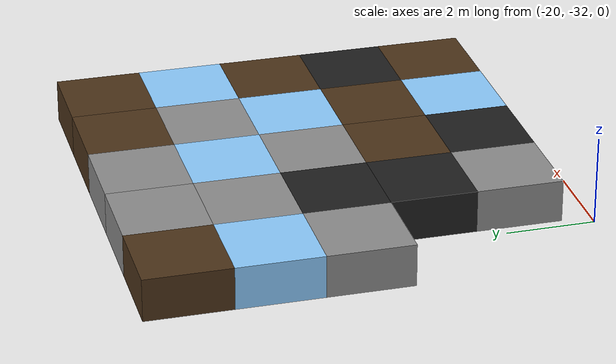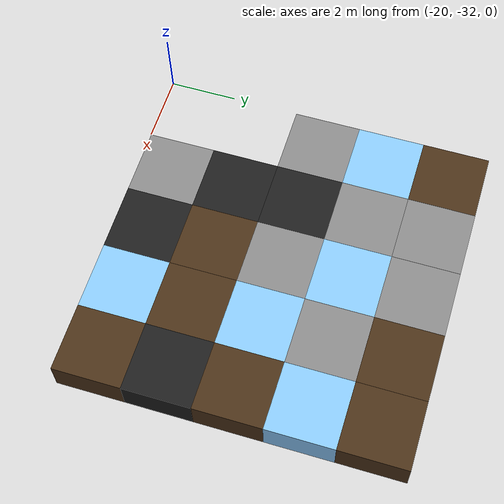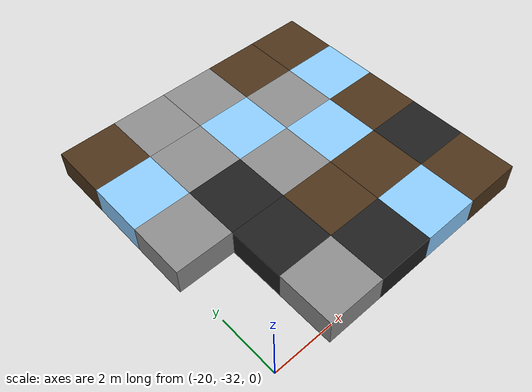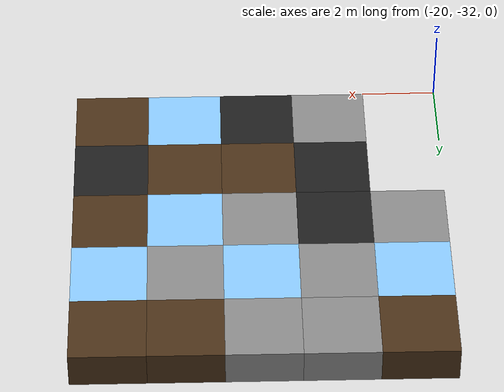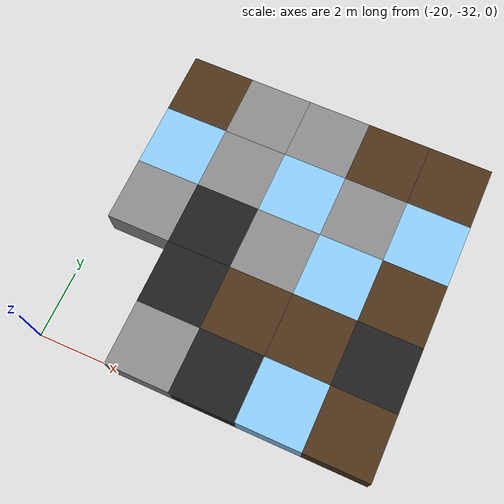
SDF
<sdf version="1.5">
 <world name="squares_example">
  <model name="tile_7_0">
   <static>true</static>
   <pose>-17.000 -31.000 -0.500 0 0 0</pose>
   <link name="link">
    <collision name="col">
     <geometry><box><size>2.0 2.0 1.0</size></box></geometry>
     <surface>
      <friction>
       <ode><mu>0.8</mu><mu2>0.3</mu2><fdir1>1 0 0</fdir1><slip1>0.0</slip1><slip2>0.0</slip2></ode>
       <torsional>
        <coefficient>0.03</coefficient>
        <use_patch_radius>false</use_patch_radius>
        <surface_radius>0.12</surface_radius>
        <ode><slip>0.0</slip></ode>
       </torsional>
      </friction>
      <bounce><restitution_coefficient>0.0</restitution_coefficient><threshold>0.1</threshold></bounce>
      <contact>
       <ode><kp>10000000000.0</kp><kd>10000000.0</kd><max_vel>0.01</max_vel><min_depth>0.0</min_depth></ode>
      </contact>
     </surface>
    </collision>
    <visual name="visual">
     <geometry><box><size>2.0 2.0 1.0</size></box></geometry>
     <material>
      <diffuse>0.55 0.55 0.55 1</diffuse>
      <ambient>0 0 0 0</ambient>
      <specular>0 0 0 1</specular>
      <emissive>0 0 0 1</emissive>
     </material>
    </visual>
   </link>
  </model>
  <model name="tile_8_0">
   <static>true</static>
   <pose>-15.000 -31.000 -0.500 0 0 0</pose>
   <link name="link">
    <collision name="col">
     <geometry><box><size>2.0 2.0 1.0</size></box></geometry>
     <surface>
      <friction>
       <ode><mu>0.4</mu><mu2>0.15</mu2><fdir1>1 0 0</fdir1><slip1>0.0</slip1><slip2>0.0</slip2></ode>
       <torsional>
        <coefficient>0.03</coefficient>
        <use_patch_radius>false</use_patch_radius>
        <surface_radius>0.12</surface_radius>
        <ode><slip>0.0</slip></ode>
       </torsional>
      </friction>
      <bounce><restitution_coefficient>0.0</restitution_coefficient><threshold>0.1</threshold></bounce>
      <contact>
       <ode><kp>1000000000.0</kp><kd>1000000.0</kd><max_vel>0.01</max_vel><min_depth>0.0</min_depth></ode>
      </contact>
     </surface>
    </collision>
    <visual name="visual">
     <geometry><box><size>2.0 2.0 1.0</size></box></geometry>
     <material>
      <diffuse>0.12 0.12 0.12 1</diffuse>
      <ambient>0 0 0 0</ambient>
      <specular>0 0 0 1</specular>
      <emissive>0 0 0 1</emissive>
     </material>
    </visual>
   </link>
  </model>
  <model name="tile_9_0">
   <static>true</static>
   <pose>-13.000 -31.000 -0.500 0 0 0</pose>
   <link name="link">
    <collision name="col">
     <geometry><box><size>2.0 2.0 1.0</size></box></geometry>
     <surface>
      <friction>
       <ode><mu>0.03</mu><mu2>0.02</mu2><fdir1>1 0 0</fdir1><slip1>0.03</slip1><slip2>0.03</slip2></ode>
       <torsional>
        <coefficient>0.005</coefficient>
        <use_patch_radius>false</use_patch_radius>
        <surface_radius>0.12</surface_radius>
        <ode><slip>0.01</slip></ode>
       </torsional>
      </friction>
      <bounce><restitution_coefficient>0.0</restitution_coefficient><threshold>0.1</threshold></bounce>
      <contact>
       <ode><kp>10000000.0</kp><kd>1000.0</kd><max_vel>0.01</max_vel><min_depth>0.0</min_depth></ode>
      </contact>
     </surface>
    </collision>
    <visual name="visual">
     <geometry><box><size>2.0 2.0 1.0</size></box></geometry>
     <material>
      <diffuse>0.55 0.80 1.00 1</diffuse>
      <ambient>0 0 0 0</ambient>
      <specular>0 0 0 1</specular>
      <emissive>0 0 0 1</emissive>
     </material>
    </visual>
   </link>
  </model>
  <model name="tile_10_0">
   <static>true</static>
   <pose>-11.000 -31.000 -0.500 0 0 0</pose>
   <link name="link">
    <collision name="col">
     <geometry><box><size>2.0 2.0 1.0</size></box></geometry>
     <surface>
      <friction>
       <ode><mu>0.6</mu><mu2>0.4</mu2><fdir1>1 0 0</fdir1><slip1>0.08</slip1><slip2>0.08</slip2></ode>
       <torsional>
        <coefficient>0.03</coefficient>
        <use_patch_radius>false</use_patch_radius>
        <surface_radius>0.12</surface_radius>
        <ode><slip>0.0</slip></ode>
       </torsional>
      </friction>
      <bounce><restitution_coefficient>0.0</restitution_coefficient><threshold>0.1</threshold></bounce>
      <contact>
       <ode><kp>1000000.0</kp><kd>10000.0</kd><max_vel>0.01</max_vel><min_depth>0.0</min_depth></ode>
      </contact>
     </surface>
    </collision>
    <visual name="visual">
     <geometry><box><size>2.0 2.0 1.0</size></box></geometry>
     <material>
      <diffuse>0.30 0.20 0.10 1</diffuse>
      <ambient>0 0 0 0</ambient>
      <specular>0 0 0 1</specular>
      <emissive>0 0 0 1</emissive>
     </material>
    </visual>
   </link>
  </model>
  <model name="tile_7_1">
   <static>true</static>
   <pose>-17.000 -29.000 -0.500 0 0 0</pose>
   <link name="link">
    <collision name="col">
     <geometry><box><size>2.0 2.0 1.0</size></box></geometry>
     <surface>
      <friction>
       <ode><mu>0.4</mu><mu2>0.15</mu2><fdir1>1 0 0</fdir1><slip1>0.0</slip1><slip2>0.0</slip2></ode>
       <torsional>
        <coefficient>0.03</coefficient>
        <use_patch_radius>false</use_patch_radius>
        <surface_radius>0.12</surface_radius>
        <ode><slip>0.0</slip></ode>
       </torsional>
      </friction>
      <bounce><restitution_coefficient>0.0</restitution_coefficient><threshold>0.1</threshold></bounce>
      <contact>
       <ode><kp>1000000000.0</kp><kd>1000000.0</kd><max_vel>0.01</max_vel><min_depth>0.0</min_depth></ode>
      </contact>
     </surface>
    </collision>
    <visual name="visual">
     <geometry><box><size>2.0 2.0 1.0</size></box></geometry>
     <material>
      <diffuse>0.12 0.12 0.12 1</diffuse>
      <ambient>0 0 0 0</ambient>
      <specular>0 0 0 1</specular>
      <emissive>0 0 0 1</emissive>
     </material>
    </visual>
   </link>
  </model>
  <model name="tile_8_1">
   <static>true</static>
   <pose>-15.000 -29.000 -0.500 0 0 0</pose>
   <link name="link">
    <collision name="col">
     <geometry><box><size>2.0 2.0 1.0</size></box></geometry>
     <surface>
      <friction>
       <ode><mu>0.6</mu><mu2>0.4</mu2><fdir1>1 0 0</fdir1><slip1>0.08</slip1><slip2>0.08</slip2></ode>
       <torsional>
        <coefficient>0.03</coefficient>
        <use_patch_radius>false</use_patch_radius>
        <surface_radius>0.12</surface_radius>
        <ode><slip>0.0</slip></ode>
       </torsional>
      </friction>
      <bounce><restitution_coefficient>0.0</restitution_coefficient><threshold>0.1</threshold></bounce>
      <contact>
       <ode><kp>1000000.0</kp><kd>10000.0</kd><max_vel>0.01</max_vel><min_depth>0.0</min_depth></ode>
      </contact>
     </surface>
    </collision>
    <visual name="visual">
     <geometry><box><size>2.0 2.0 1.0</size></box></geometry>
     <material>
      <diffuse>0.30 0.20 0.10 1</diffuse>
      <ambient>0 0 0 0</ambient>
      <specular>0 0 0 1</specular>
      <emissive>0 0 0 1</emissive>
     </material>
    </visual>
   </link>
  </model>
  <model name="tile_9_1">
   <static>true</static>
   <pose>-13.000 -29.000 -0.500 0 0 0</pose>
   <link name="link">
    <collision name="col">
     <geometry><box><size>2.0 2.0 1.0</size></box></geometry>
     <surface>
      <friction>
       <ode><mu>0.6</mu><mu2>0.4</mu2><fdir1>1 0 0</fdir1><slip1>0.08</slip1><slip2>0.08</slip2></ode>
       <torsional>
        <coefficient>0.03</coefficient>
        <use_patch_radius>false</use_patch_radius>
        <surface_radius>0.12</surface_radius>
        <ode><slip>0.0</slip></ode>
       </torsional>
      </friction>
      <bounce><restitution_coefficient>0.0</restitution_coefficient><threshold>0.1</threshold></bounce>
      <contact>
       <ode><kp>1000000.0</kp><kd>10000.0</kd><max_vel>0.01</max_vel><min_depth>0.0</min_depth></ode>
      </contact>
     </surface>
    </collision>
    <visual name="visual">
     <geometry><box><size>2.0 2.0 1.0</size></box></geometry>
     <material>
      <diffuse>0.30 0.20 0.10 1</diffuse>
      <ambient>0 0 0 0</ambient>
      <specular>0 0 0 1</specular>
      <emissive>0 0 0 1</emissive>
     </material>
    </visual>
   </link>
  </model>
  <model name="tile_10_1">
   <static>true</static>
   <pose>-11.000 -29.000 -0.500 0 0 0</pose>
   <link name="link">
    <collision name="col">
     <geometry><box><size>2.0 2.0 1.0</size></box></geometry>
     <surface>
      <friction>
       <ode><mu>0.4</mu><mu2>0.15</mu2><fdir1>1 0 0</fdir1><slip1>0.0</slip1><slip2>0.0</slip2></ode>
       <torsional>
        <coefficient>0.03</coefficient>
        <use_patch_radius>false</use_patch_radius>
        <surface_radius>0.12</surface_radius>
        <ode><slip>0.0</slip></ode>
       </torsional>
      </friction>
      <bounce><restitution_coefficient>0.0</restitution_coefficient><threshold>0.1</threshold></bounce>
      <contact>
       <ode><kp>1000000000.0</kp><kd>1000000.0</kd><max_vel>0.01</max_vel><min_depth>0.0</min_depth></ode>
      </contact>
     </surface>
    </collision>
    <visual name="visual">
     <geometry><box><size>2.0 2.0 1.0</size></box></geometry>
     <material>
      <diffuse>0.12 0.12 0.12 1</diffuse>
      <ambient>0 0 0 0</ambient>
      <specular>0 0 0 1</specular>
      <emissive>0 0 0 1</emissive>
     </material>
    </visual>
   </link>
  </model>
  <model name="tile_6_2">
   <static>true</static>
   <pose>-19.000 -27.000 -0.500 0 0 0</pose>
   <link name="link">
    <collision name="col">
     <geometry><box><size>2.0 2.0 1.0</size></box></geometry>
     <surface>
      <friction>
       <ode><mu>0.8</mu><mu2>0.3</mu2><fdir1>1 0 0</fdir1><slip1>0.0</slip1><slip2>0.0</slip2></ode>
       <torsional>
        <coefficient>0.03</coefficient>
        <use_patch_radius>false</use_patch_radius>
        <surface_radius>0.12</surface_radius>
        <ode><slip>0.0</slip></ode>
       </torsional>
      </friction>
      <bounce><restitution_coefficient>0.0</restitution_coefficient><threshold>0.1</threshold></bounce>
      <contact>
       <ode><kp>10000000000.0</kp><kd>10000000.0</kd><max_vel>0.01</max_vel><min_depth>0.0</min_depth></ode>
      </contact>
     </surface>
    </collision>
    <visual name="visual">
     <geometry><box><size>2.0 2.0 1.0</size></box></geometry>
     <material>
      <diffuse>0.55 0.55 0.55 1</diffuse>
      <ambient>0 0 0 0</ambient>
      <specular>0 0 0 1</specular>
      <emissive>0 0 0 1</emissive>
     </material>
    </visual>
   </link>
  </model>
  <model name="tile_7_2">
   <static>true</static>
   <pose>-17.000 -27.000 -0.500 0 0 0</pose>
   <link name="link">
    <collision name="col">
     <geometry><box><size>2.0 2.0 1.0</size></box></geometry>
     <surface>
      <friction>
       <ode><mu>0.4</mu><mu2>0.15</mu2><fdir1>1 0 0</fdir1><slip1>0.0</slip1><slip2>0.0</slip2></ode>
       <torsional>
        <coefficient>0.03</coefficient>
        <use_patch_radius>false</use_patch_radius>
        <surface_radius>0.12</surface_radius>
        <ode><slip>0.0</slip></ode>
       </torsional>
      </friction>
      <bounce><restitution_coefficient>0.0</restitution_coefficient><threshold>0.1</threshold></bounce>
      <contact>
       <ode><kp>1000000000.0</kp><kd>1000000.0</kd><max_vel>0.01</max_vel><min_depth>0.0</min_depth></ode>
      </contact>
     </surface>
    </collision>
    <visual name="visual">
     <geometry><box><size>2.0 2.0 1.0</size></box></geometry>
     <material>
      <diffuse>0.12 0.12 0.12 1</diffuse>
      <ambient>0 0 0 0</ambient>
      <specular>0 0 0 1</specular>
      <emissive>0 0 0 1</emissive>
     </material>
    </visual>
   </link>
  </model>
  <model name="tile_8_2">
   <static>true</static>
   <pose>-15.000 -27.000 -0.500 0 0 0</pose>
   <link name="link">
    <collision name="col">
     <geometry><box><size>2.0 2.0 1.0</size></box></geometry>
     <surface>
      <friction>
       <ode><mu>0.8</mu><mu2>0.3</mu2><fdir1>1 0 0</fdir1><slip1>0.0</slip1><slip2>0.0</slip2></ode>
       <torsional>
        <coefficient>0.03</coefficient>
        <use_patch_radius>false</use_patch_radius>
        <surface_radius>0.12</surface_radius>
        <ode><slip>0.0</slip></ode>
       </torsional>
      </friction>
      <bounce><restitution_coefficient>0.0</restitution_coefficient><threshold>0.1</threshold></bounce>
      <contact>
       <ode><kp>10000000000.0</kp><kd>10000000.0</kd><max_vel>0.01</max_vel><min_depth>0.0</min_depth></ode>
      </contact>
     </surface>
    </collision>
    <visual name="visual">
     <geometry><box><size>2.0 2.0 1.0</size></box></geometry>
     <material>
      <diffuse>0.55 0.55 0.55 1</diffuse>
      <ambient>0 0 0 0</ambient>
      <specular>0 0 0 1</specular>
      <emissive>0 0 0 1</emissive>
     </material>
    </visual>
   </link>
  </model>
  <model name="tile_9_2">
   <static>true</static>
   <pose>-13.000 -27.000 -0.500 0 0 0</pose>
   <link name="link">
    <collision name="col">
     <geometry><box><size>2.0 2.0 1.0</size></box></geometry>
     <surface>
      <friction>
       <ode><mu>0.03</mu><mu2>0.02</mu2><fdir1>1 0 0</fdir1><slip1>0.03</slip1><slip2>0.03</slip2></ode>
       <torsional>
        <coefficient>0.005</coefficient>
        <use_patch_radius>false</use_patch_radius>
        <surface_radius>0.12</surface_radius>
        <ode><slip>0.01</slip></ode>
       </torsional>
      </friction>
      <bounce><restitution_coefficient>0.0</restitution_coefficient><threshold>0.1</threshold></bounce>
      <contact>
       <ode><kp>10000000.0</kp><kd>1000.0</kd><max_vel>0.01</max_vel><min_depth>0.0</min_depth></ode>
      </contact>
     </surface>
    </collision>
    <visual name="visual">
     <geometry><box><size>2.0 2.0 1.0</size></box></geometry>
     <material>
      <diffuse>0.55 0.80 1.00 1</diffuse>
      <ambient>0 0 0 0</ambient>
      <specular>0 0 0 1</specular>
      <emissive>0 0 0 1</emissive>
     </material>
    </visual>
   </link>
  </model>
  <model name="tile_10_2">
   <static>true</static>
   <pose>-11.000 -27.000 -0.500 0 0 0</pose>
   <link name="link">
    <collision name="col">
     <geometry><box><size>2.0 2.0 1.0</size></box></geometry>
     <surface>
      <friction>
       <ode><mu>0.6</mu><mu2>0.4</mu2><fdir1>1 0 0</fdir1><slip1>0.08</slip1><slip2>0.08</slip2></ode>
       <torsional>
        <coefficient>0.03</coefficient>
        <use_patch_radius>false</use_patch_radius>
        <surface_radius>0.12</surface_radius>
        <ode><slip>0.0</slip></ode>
       </torsional>
      </friction>
      <bounce><restitution_coefficient>0.0</restitution_coefficient><threshold>0.1</threshold></bounce>
      <contact>
       <ode><kp>1000000.0</kp><kd>10000.0</kd><max_vel>0.01</max_vel><min_depth>0.0</min_depth></ode>
      </contact>
     </surface>
    </collision>
    <visual name="visual">
     <geometry><box><size>2.0 2.0 1.0</size></box></geometry>
     <material>
      <diffuse>0.30 0.20 0.10 1</diffuse>
      <ambient>0 0 0 0</ambient>
      <specular>0 0 0 1</specular>
      <emissive>0 0 0 1</emissive>
     </material>
    </visual>
   </link>
  </model>
  <model name="tile_6_3">
   <static>true</static>
   <pose>-19.000 -25.000 -0.500 0 0 0</pose>
   <link name="link">
    <collision name="col">
     <geometry><box><size>2.0 2.0 1.0</size></box></geometry>
     <surface>
      <friction>
       <ode><mu>0.03</mu><mu2>0.02</mu2><fdir1>1 0 0</fdir1><slip1>0.03</slip1><slip2>0.03</slip2></ode>
       <torsional>
        <coefficient>0.005</coefficient>
        <use_patch_radius>false</use_patch_radius>
        <surface_radius>0.12</surface_radius>
        <ode><slip>0.01</slip></ode>
       </torsional>
      </friction>
      <bounce><restitution_coefficient>0.0</restitution_coefficient><threshold>0.1</threshold></bounce>
      <contact>
       <ode><kp>10000000.0</kp><kd>1000.0</kd><max_vel>0.01</max_vel><min_depth>0.0</min_depth></ode>
      </contact>
     </surface>
    </collision>
    <visual name="visual">
     <geometry><box><size>2.0 2.0 1.0</size></box></geometry>
     <material>
      <diffuse>0.55 0.80 1.00 1</diffuse>
      <ambient>0 0 0 0</ambient>
      <specular>0 0 0 1</specular>
      <emissive>0 0 0 1</emissive>
     </material>
    </visual>
   </link>
  </model>
  <model name="tile_7_3">
   <static>true</static>
   <pose>-17.000 -25.000 -0.500 0 0 0</pose>
   <link name="link">
    <collision name="col">
     <geometry><box><size>2.0 2.0 1.0</size></box></geometry>
     <surface>
      <friction>
       <ode><mu>0.8</mu><mu2>0.3</mu2><fdir1>1 0 0</fdir1><slip1>0.0</slip1><slip2>0.0</slip2></ode>
       <torsional>
        <coefficient>0.03</coefficient>
        <use_patch_radius>false</use_patch_radius>
        <surface_radius>0.12</surface_radius>
        <ode><slip>0.0</slip></ode>
       </torsional>
      </friction>
      <bounce><restitution_coefficient>0.0</restitution_coefficient><threshold>0.1</threshold></bounce>
      <contact>
       <ode><kp>10000000000.0</kp><kd>10000000.0</kd><max_vel>0.01</max_vel><min_depth>0.0</min_depth></ode>
      </contact>
     </surface>
    </collision>
    <visual name="visual">
     <geometry><box><size>2.0 2.0 1.0</size></box></geometry>
     <material>
      <diffuse>0.55 0.55 0.55 1</diffuse>
      <ambient>0 0 0 0</ambient>
      <specular>0 0 0 1</specular>
      <emissive>0 0 0 1</emissive>
     </material>
    </visual>
   </link>
  </model>
  <model name="tile_8_3">
   <static>true</static>
   <pose>-15.000 -25.000 -0.500 0 0 0</pose>
   <link name="link">
    <collision name="col">
     <geometry><box><size>2.0 2.0 1.0</size></box></geometry>
     <surface>
      <friction>
       <ode><mu>0.03</mu><mu2>0.02</mu2><fdir1>1 0 0</fdir1><slip1>0.03</slip1><slip2>0.03</slip2></ode>
       <torsional>
        <coefficient>0.005</coefficient>
        <use_patch_radius>false</use_patch_radius>
        <surface_radius>0.12</surface_radius>
        <ode><slip>0.01</slip></ode>
       </torsional>
      </friction>
      <bounce><restitution_coefficient>0.0</restitution_coefficient><threshold>0.1</threshold></bounce>
      <contact>
       <ode><kp>10000000.0</kp><kd>1000.0</kd><max_vel>0.01</max_vel><min_depth>0.0</min_depth></ode>
      </contact>
     </surface>
    </collision>
    <visual name="visual">
     <geometry><box><size>2.0 2.0 1.0</size></box></geometry>
     <material>
      <diffuse>0.55 0.80 1.00 1</diffuse>
      <ambient>0 0 0 0</ambient>
      <specular>0 0 0 1</specular>
      <emissive>0 0 0 1</emissive>
     </material>
    </visual>
   </link>
  </model>
  <model name="tile_9_3">
   <static>true</static>
   <pose>-13.000 -25.000 -0.500 0 0 0</pose>
   <link name="link">
    <collision name="col">
     <geometry><box><size>2.0 2.0 1.0</size></box></geometry>
     <surface>
      <friction>
       <ode><mu>0.8</mu><mu2>0.3</mu2><fdir1>1 0 0</fdir1><slip1>0.0</slip1><slip2>0.0</slip2></ode>
       <torsional>
        <coefficient>0.03</coefficient>
        <use_patch_radius>false</use_patch_radius>
        <surface_radius>0.12</surface_radius>
        <ode><slip>0.0</slip></ode>
       </torsional>
      </friction>
      <bounce><restitution_coefficient>0.0</restitution_coefficient><threshold>0.1</threshold></bounce>
      <contact>
       <ode><kp>10000000000.0</kp><kd>10000000.0</kd><max_vel>0.01</max_vel><min_depth>0.0</min_depth></ode>
      </contact>
     </surface>
    </collision>
    <visual name="visual">
     <geometry><box><size>2.0 2.0 1.0</size></box></geometry>
     <material>
      <diffuse>0.55 0.55 0.55 1</diffuse>
      <ambient>0 0 0 0</ambient>
      <specular>0 0 0 1</specular>
      <emissive>0 0 0 1</emissive>
     </material>
    </visual>
   </link>
  </model>
  <model name="tile_10_3">
   <static>true</static>
   <pose>-11.000 -25.000 -0.500 0 0 0</pose>
   <link name="link">
    <collision name="col">
     <geometry><box><size>2.0 2.0 1.0</size></box></geometry>
     <surface>
      <friction>
       <ode><mu>0.03</mu><mu2>0.02</mu2><fdir1>1 0 0</fdir1><slip1>0.03</slip1><slip2>0.03</slip2></ode>
       <torsional>
        <coefficient>0.005</coefficient>
        <use_patch_radius>false</use_patch_radius>
        <surface_radius>0.12</surface_radius>
        <ode><slip>0.01</slip></ode>
       </torsional>
      </friction>
      <bounce><restitution_coefficient>0.0</restitution_coefficient><threshold>0.1</threshold></bounce>
      <contact>
       <ode><kp>10000000.0</kp><kd>1000.0</kd><max_vel>0.01</max_vel><min_depth>0.0</min_depth></ode>
      </contact>
     </surface>
    </collision>
    <visual name="visual">
     <geometry><box><size>2.0 2.0 1.0</size></box></geometry>
     <material>
      <diffuse>0.55 0.80 1.00 1</diffuse>
      <ambient>0 0 0 0</ambient>
      <specular>0 0 0 1</specular>
      <emissive>0 0 0 1</emissive>
     </material>
    </visual>
   </link>
  </model>
  <model name="tile_6_4">
   <static>true</static>
   <pose>-19.000 -23.000 -0.500 0 0 0</pose>
   <link name="link">
    <collision name="col">
     <geometry><box><size>2.0 2.0 1.0</size></box></geometry>
     <surface>
      <friction>
       <ode><mu>0.6</mu><mu2>0.4</mu2><fdir1>1 0 0</fdir1><slip1>0.08</slip1><slip2>0.08</slip2></ode>
       <torsional>
        <coefficient>0.03</coefficient>
        <use_patch_radius>false</use_patch_radius>
        <surface_radius>0.12</surface_radius>
        <ode><slip>0.0</slip></ode>
       </torsional>
      </friction>
      <bounce><restitution_coefficient>0.0</restitution_coefficient><threshold>0.1</threshold></bounce>
      <contact>
       <ode><kp>1000000.0</kp><kd>10000.0</kd><max_vel>0.01</max_vel><min_depth>0.0</min_depth></ode>
      </contact>
     </surface>
    </collision>
    <visual name="visual">
     <geometry><box><size>2.0 2.0 1.0</size></box></geometry>
     <material>
      <diffuse>0.30 0.20 0.10 1</diffuse>
      <ambient>0 0 0 0</ambient>
      <specular>0 0 0 1</specular>
      <emissive>0 0 0 1</emissive>
     </material>
    </visual>
   </link>
  </model>
  <model name="tile_7_4">
   <static>true</static>
   <pose>-17.000 -23.000 -0.500 0 0 0</pose>
   <link name="link">
    <collision name="col">
     <geometry><box><size>2.0 2.0 1.0</size></box></geometry>
     <surface>
      <friction>
       <ode><mu>0.8</mu><mu2>0.3</mu2><fdir1>1 0 0</fdir1><slip1>0.0</slip1><slip2>0.0</slip2></ode>
       <torsional>
        <coefficient>0.03</coefficient>
        <use_patch_radius>false</use_patch_radius>
        <surface_radius>0.12</surface_radius>
        <ode><slip>0.0</slip></ode>
       </torsional>
      </friction>
      <bounce><restitution_coefficient>0.0</restitution_coefficient><threshold>0.1</threshold></bounce>
      <contact>
       <ode><kp>10000000000.0</kp><kd>10000000.0</kd><max_vel>0.01</max_vel><min_depth>0.0</min_depth></ode>
      </contact>
     </surface>
    </collision>
    <visual name="visual">
     <geometry><box><size>2.0 2.0 1.0</size></box></geometry>
     <material>
      <diffuse>0.55 0.55 0.55 1</diffuse>
      <ambient>0 0 0 0</ambient>
      <specular>0 0 0 1</specular>
      <emissive>0 0 0 1</emissive>
     </material>
    </visual>
   </link>
  </model>
  <model name="tile_8_4">
   <static>true</static>
   <pose>-15.000 -23.000 -0.500 0 0 0</pose>
   <link name="link">
    <collision name="col">
     <geometry><box><size>2.0 2.0 1.0</size></box></geometry>
     <surface>
      <friction>
       <ode><mu>0.8</mu><mu2>0.3</mu2><fdir1>1 0 0</fdir1><slip1>0.0</slip1><slip2>0.0</slip2></ode>
       <torsional>
        <coefficient>0.03</coefficient>
        <use_patch_radius>false</use_patch_radius>
        <surface_radius>0.12</surface_radius>
        <ode><slip>0.0</slip></ode>
       </torsional>
      </friction>
      <bounce><restitution_coefficient>0.0</restitution_coefficient><threshold>0.1</threshold></bounce>
      <contact>
       <ode><kp>10000000000.0</kp><kd>10000000.0</kd><max_vel>0.01</max_vel><min_depth>0.0</min_depth></ode>
      </contact>
     </surface>
    </collision>
    <visual name="visual">
     <geometry><box><size>2.0 2.0 1.0</size></box></geometry>
     <material>
      <diffuse>0.55 0.55 0.55 1</diffuse>
      <ambient>0 0 0 0</ambient>
      <specular>0 0 0 1</specular>
      <emissive>0 0 0 1</emissive>
     </material>
    </visual>
   </link>
  </model>
  <model name="tile_9_4">
   <static>true</static>
   <pose>-13.000 -23.000 -0.500 0 0 0</pose>
   <link name="link">
    <collision name="col">
     <geometry><box><size>2.0 2.0 1.0</size></box></geometry>
     <surface>
      <friction>
       <ode><mu>0.6</mu><mu2>0.4</mu2><fdir1>1 0 0</fdir1><slip1>0.08</slip1><slip2>0.08</slip2></ode>
       <torsional>
        <coefficient>0.03</coefficient>
        <use_patch_radius>false</use_patch_radius>
        <surface_radius>0.12</surface_radius>
        <ode><slip>0.0</slip></ode>
       </torsional>
      </friction>
      <bounce><restitution_coefficient>0.0</restitution_coefficient><threshold>0.1</threshold></bounce>
      <contact>
       <ode><kp>1000000.0</kp><kd>10000.0</kd><max_vel>0.01</max_vel><min_depth>0.0</min_depth></ode>
      </contact>
     </surface>
    </collision>
    <visual name="visual">
     <geometry><box><size>2.0 2.0 1.0</size></box></geometry>
     <material>
      <diffuse>0.30 0.20 0.10 1</diffuse>
      <ambient>0 0 0 0</ambient>
      <specular>0 0 0 1</specular>
      <emissive>0 0 0 1</emissive>
     </material>
    </visual>
   </link>
  </model>
  <model name="tile_10_4">
   <static>true</static>
   <pose>-11.000 -23.000 -0.500 0 0 0</pose>
   <link name="link">
    <collision name="col">
     <geometry><box><size>2.0 2.0 1.0</size></box></geometry>
     <surface>
      <friction>
       <ode><mu>0.6</mu><mu2>0.4</mu2><fdir1>1 0 0</fdir1><slip1>0.08</slip1><slip2>0.08</slip2></ode>
       <torsional>
        <coefficient>0.03</coefficient>
        <use_patch_radius>false</use_patch_radius>
        <surface_radius>0.12</surface_radius>
        <ode><slip>0.0</slip></ode>
       </torsional>
      </friction>
      <bounce><restitution_coefficient>0.0</restitution_coefficient><threshold>0.1</threshold></bounce>
      <contact>
       <ode><kp>1000000.0</kp><kd>10000.0</kd><max_vel>0.01</max_vel><min_depth>0.0</min_depth></ode>
      </contact>
     </surface>
    </collision>
    <visual name="visual">
     <geometry><box><size>2.0 2.0 1.0</size></box></geometry>
     <material>
      <diffuse>0.30 0.20 0.10 1</diffuse>
      <ambient>0 0 0 0</ambient>
      <specular>0 0 0 1</specular>
      <emissive>0 0 0 1</emissive>
     </material>
    </visual>
   </link>
  </model>
 </world>
</sdf>
